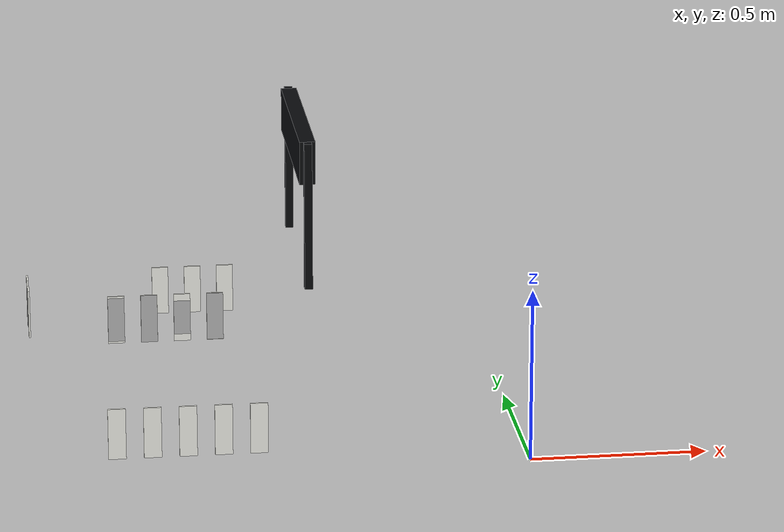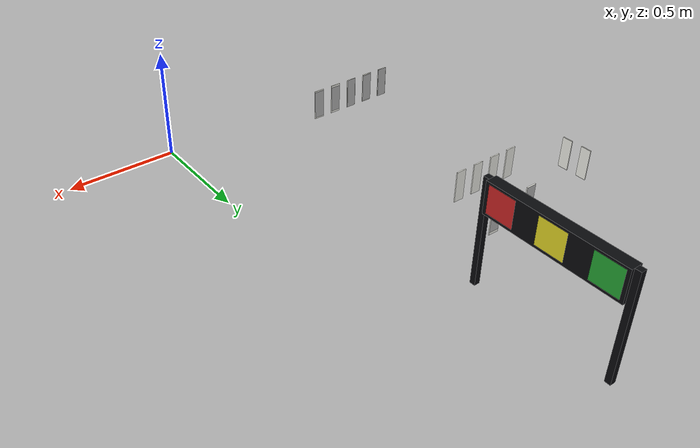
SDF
<sdf version="1.6">
 <world name="smart_community">
  <model name="north_signal">
   <static>true</static>
   <pose>-0.47 1.8 0 0 0 0</pose>
   <link name="body">
    <visual name="left_post">
     <pose>0 -0.3075 0.24 0 0 0</pose>
     <geometry><box><size>0.025 0.025 0.48</size></box></geometry>
     <material><ambient>0.035 0.04 0.05 1</ambient><diffuse>0.035 0.04 0.05 1</diffuse></material>
    </visual>
    <collision name="left_post">
     <pose>0 -0.3075 0.24 0 0 0</pose>
     <geometry><box><size>0.025 0.025 0.48</size></box></geometry>
     <surface><friction><ode><mu>1.0</mu><mu2>1.0</mu2></ode></friction></surface>
    </collision>
    <visual name="right_post">
     <pose>0 0.3075 0.24 0 0 0</pose>
     <geometry><box><size>0.025 0.025 0.48</size></box></geometry>
     <material><ambient>0.035 0.04 0.05 1</ambient><diffuse>0.035 0.04 0.05 1</diffuse></material>
    </visual>
    <collision name="right_post">
     <pose>0 0.3075 0.24 0 0 0</pose>
     <geometry><box><size>0.025 0.025 0.48</size></box></geometry>
     <surface><friction><ode><mu>1.0</mu><mu2>1.0</mu2></ode></friction></surface>
    </collision>
    <visual name="housing">
     <pose>0 0 0.41 0 0 0</pose>
     <geometry><box><size>0.05 0.59 0.14</size></box></geometry>
     <material><ambient>0.035 0.04 0.05 1</ambient><diffuse>0.035 0.04 0.05 1</diffuse></material>
    </visual>
    <collision name="housing">
     <pose>0 0 0.41 0 0 0</pose>
     <geometry><box><size>0.05 0.59 0.14</size></box></geometry>
     <surface><friction><ode><mu>1.0</mu><mu2>1.0</mu2></ode></friction></surface>
    </collision>
    <visual name="red">
     <pose>0.025001 -0.22 0.41 0 0 0</pose>
     <geometry>
      <mesh><uri>model://smart_community_sim/meshes/sign.dae</uri><scale>1 0.12 0.12</scale></mesh>
     </geometry>
     <material>
      <script>
       <uri>model://smart_community_sim/materials/scripts</uri>
       <uri>model://smart_community_sim/materials/textures</uri>
       <name>Community/signal_red_on</name>
      </script>
     </material>
    </visual>
    <visual name="yellow">
     <pose>0.025001 0 0.41 0 0 0</pose>
     <geometry>
      <mesh><uri>model://smart_community_sim/meshes/sign.dae</uri><scale>1 0.12 0.12</scale></mesh>
     </geometry>
     <material>
      <script>
       <uri>model://smart_community_sim/materials/scripts</uri>
       <uri>model://smart_community_sim/materials/textures</uri>
       <name>Community/signal_yellow_off</name>
      </script>
     </material>
    </visual>
    <visual name="green">
     <pose>0.025001 0.22 0.41 0 0 0</pose>
     <geometry>
      <mesh><uri>model://smart_community_sim/meshes/sign.dae</uri><scale>1 0.12 0.12</scale></mesh>
     </geometry>
     <material>
      <script>
       <uri>model://smart_community_sim/materials/scripts</uri>
       <uri>model://smart_community_sim/materials/textures</uri>
       <name>Community/signal_green_off</name>
      </script>
     </material>
    </visual>
   </link>
   <plugin name="signal_cycle" filename="libcommunity_signal.so">
    <redSeconds>10</redSeconds>
    <greenSeconds>15</greenSeconds>
    <yellowSeconds>5</yellowSeconds>
   </plugin>
  </model>
  <model name="person_A_resident_1">
   <static>true</static>
   <pose>-1.36 1.17 0 0 0 3.14159</pose>
   <link name="body">
    <visual name="standee">
     <pose>0 0 0.075 0 0 0</pose>
     <geometry><box><size>0.005 0.05 0.15</size></box></geometry>
     <material><ambient>0.96 0.96 0.93 1</ambient><diffuse>0.96 0.96 0.93 1</diffuse></material>
    </visual>
    <collision name="standee">
     <pose>0 0 0.075 0 0 0</pose>
     <geometry><box><size>0.005 0.05 0.15</size></box></geometry>
     <surface><friction><ode><mu>1.0</mu><mu2>1.0</mu2></ode></friction></surface>
    </collision>
    <visual name="portrait">
     <pose>0.002501 0 0.075 0 0 0</pose>
     <geometry>
      <mesh><uri>model://smart_community_sim/meshes/sign.dae</uri><scale>1 0.05 0.113548</scale></mesh>
     </geometry>
     <material>
      <script>
       <uri>model://smart_community_sim/materials/scripts</uri>
       <uri>model://smart_community_sim/materials/textures</uri>
       <name>Community/resident_1</name>
      </script>
     </material>
    </visual>
   </link>
  </model>
  <model name="person_A_resident_2">
   <static>true</static>
   <pose>-1.1 1.07 0 0 0 -1.5708</pose>
   <link name="body">
    <visual name="standee">
     <pose>0 0 0.075 0 0 0</pose>
     <geometry><box><size>0.005 0.05 0.15</size></box></geometry>
     <material><ambient>0.96 0.96 0.93 1</ambient><diffuse>0.96 0.96 0.93 1</diffuse></material>
    </visual>
    <collision name="standee">
     <pose>0 0 0.075 0 0 0</pose>
     <geometry><box><size>0.005 0.05 0.15</size></box></geometry>
     <surface><friction><ode><mu>1.0</mu><mu2>1.0</mu2></ode></friction></surface>
    </collision>
    <visual name="portrait">
     <pose>0.002501 0 0.075 0 0 0</pose>
     <geometry>
      <mesh><uri>model://smart_community_sim/meshes/sign.dae</uri><scale>1 0.05 0.138372</scale></mesh>
     </geometry>
     <material>
      <script>
       <uri>model://smart_community_sim/materials/scripts</uri>
       <uri>model://smart_community_sim/materials/textures</uri>
       <name>Community/resident_2</name>
      </script>
     </material>
    </visual>
   </link>
  </model>
  <model name="person_A_visitor_F1">
   <static>true</static>
   <pose>-1 1.07 0 0 0 -1.5708</pose>
   <link name="body">
    <visual name="standee">
     <pose>0 0 0.075 0 0 0</pose>
     <geometry><box><size>0.005 0.05 0.15</size></box></geometry>
     <material><ambient>0.96 0.96 0.93 1</ambient><diffuse>0.96 0.96 0.93 1</diffuse></material>
    </visual>
    <collision name="standee">
     <pose>0 0 0.075 0 0 0</pose>
     <geometry><box><size>0.005 0.05 0.15</size></box></geometry>
     <surface><friction><ode><mu>1.0</mu><mu2>1.0</mu2></ode></friction></surface>
    </collision>
    <visual name="portrait">
     <pose>0.002501 0 0.075 0 0 0</pose>
     <geometry>
      <mesh><uri>model://smart_community_sim/meshes/sign.dae</uri><scale>1 0.049726 0.15</scale></mesh>
     </geometry>
     <material>
      <script>
       <uri>model://smart_community_sim/materials/scripts</uri>
       <uri>model://smart_community_sim/materials/textures</uri>
       <name>Community/visitor_F1</name>
      </script>
     </material>
    </visual>
   </link>
  </model>
  <model name="person_A_resident_3">
   <static>true</static>
   <pose>-0.9 1.07 0 0 0 -1.5708</pose>
   <link name="body">
    <visual name="standee">
     <pose>0 0 0.075 0 0 0</pose>
     <geometry><box><size>0.005 0.05 0.15</size></box></geometry>
     <material><ambient>0.96 0.96 0.93 1</ambient><diffuse>0.96 0.96 0.93 1</diffuse></material>
    </visual>
    <collision name="standee">
     <pose>0 0 0.075 0 0 0</pose>
     <geometry><box><size>0.005 0.05 0.15</size></box></geometry>
     <surface><friction><ode><mu>1.0</mu><mu2>1.0</mu2></ode></friction></surface>
    </collision>
    <visual name="portrait">
     <pose>0.002501 0 0.075 0 0 0</pose>
     <geometry>
      <mesh><uri>model://smart_community_sim/meshes/sign.dae</uri><scale>1 0.05 0.106832</scale></mesh>
     </geometry>
     <material>
      <script>
       <uri>model://smart_community_sim/materials/scripts</uri>
       <uri>model://smart_community_sim/materials/textures</uri>
       <name>Community/resident_3</name>
      </script>
     </material>
    </visual>
   </link>
  </model>
  <model name="person_A_resident_4">
   <static>true</static>
   <pose>-0.85 1.32 0 0 0 1.5708</pose>
   <link name="body">
    <visual name="standee">
     <pose>0 0 0.075 0 0 0</pose>
     <geometry><box><size>0.005 0.05 0.15</size></box></geometry>
     <material><ambient>0.96 0.96 0.93 1</ambient><diffuse>0.96 0.96 0.93 1</diffuse></material>
    </visual>
    <collision name="standee">
     <pose>0 0 0.075 0 0 0</pose>
     <geometry><box><size>0.005 0.05 0.15</size></box></geometry>
     <surface><friction><ode><mu>1.0</mu><mu2>1.0</mu2></ode></friction></surface>
    </collision>
    <visual name="portrait">
     <pose>0.002501 0 0.075 0 0 0</pose>
     <geometry>
      <mesh><uri>model://smart_community_sim/meshes/sign.dae</uri><scale>1 0.05 0.106707</scale></mesh>
     </geometry>
     <material>
      <script>
       <uri>model://smart_community_sim/materials/scripts</uri>
       <uri>model://smart_community_sim/materials/textures</uri>
       <name>Community/resident_4</name>
      </script>
     </material>
    </visual>
   </link>
  </model>
  <model name="person_A_resident_9">
   <static>true</static>
   <pose>-0.95 1.32 0 0 0 1.5708</pose>
   <link name="body">
    <visual name="standee">
     <pose>0 0 0.075 0 0 0</pose>
     <geometry><box><size>0.005 0.05 0.15</size></box></geometry>
     <material><ambient>0.96 0.96 0.93 1</ambient><diffuse>0.96 0.96 0.93 1</diffuse></material>
    </visual>
    <collision name="standee">
     <pose>0 0 0.075 0 0 0</pose>
     <geometry><box><size>0.005 0.05 0.15</size></box></geometry>
     <surface><friction><ode><mu>1.0</mu><mu2>1.0</mu2></ode></friction></surface>
    </collision>
    <visual name="portrait">
     <pose>0.002501 0 0.075 0 0 0</pose>
     <geometry>
      <mesh><uri>model://smart_community_sim/meshes/sign.dae</uri><scale>1 0.05 0.147917</scale></mesh>
     </geometry>
     <material>
      <script>
       <uri>model://smart_community_sim/materials/scripts</uri>
       <uri>model://smart_community_sim/materials/textures</uri>
       <name>Community/resident_9</name>
      </script>
     </material>
    </visual>
   </link>
  </model>
  <model name="person_A_resident_10">
   <static>true</static>
   <pose>-0.75 1.32 0 0 0 1.5708</pose>
   <link name="body">
    <visual name="standee">
     <pose>0 0 0.075 0 0 0</pose>
     <geometry><box><size>0.005 0.05 0.15</size></box></geometry>
     <material><ambient>0.96 0.96 0.93 1</ambient><diffuse>0.96 0.96 0.93 1</diffuse></material>
    </visual>
    <collision name="standee">
     <pose>0 0 0.075 0 0 0</pose>
     <geometry><box><size>0.005 0.05 0.15</size></box></geometry>
     <surface><friction><ode><mu>1.0</mu><mu2>1.0</mu2></ode></friction></surface>
    </collision>
    <visual name="portrait">
     <pose>0.002501 0 0.075 0 0 0</pose>
     <geometry>
      <mesh><uri>model://smart_community_sim/meshes/sign.dae</uri><scale>1 0.05 0.124828</scale></mesh>
     </geometry>
     <material>
      <script>
       <uri>model://smart_community_sim/materials/scripts</uri>
       <uri>model://smart_community_sim/materials/textures</uri>
       <name>Community/resident_10</name>
      </script>
     </material>
    </visual>
   </link>
  </model>
  <model name="person_A_resident_11">
   <static>true</static>
   <pose>-0.8 1.07 0 0 0 -1.5708</pose>
   <link name="body">
    <visual name="standee">
     <pose>0 0 0.075 0 0 0</pose>
     <geometry><box><size>0.005 0.05 0.15</size></box></geometry>
     <material><ambient>0.96 0.96 0.93 1</ambient><diffuse>0.96 0.96 0.93 1</diffuse></material>
    </visual>
    <collision name="standee">
     <pose>0 0 0.075 0 0 0</pose>
     <geometry><box><size>0.005 0.05 0.15</size></box></geometry>
     <surface><friction><ode><mu>1.0</mu><mu2>1.0</mu2></ode></friction></surface>
    </collision>
    <visual name="portrait">
     <pose>0.002501 0 0.075 0 0 0</pose>
     <geometry>
      <mesh><uri>model://smart_community_sim/meshes/sign.dae</uri><scale>1 0.05 0.147934</scale></mesh>
     </geometry>
     <material>
      <script>
       <uri>model://smart_community_sim/materials/scripts</uri>
       <uri>model://smart_community_sim/materials/textures</uri>
       <name>Community/resident_11</name>
      </script>
     </material>
    </visual>
   </link>
  </model>
  <model name="person_A_resident_12">
   <static>true</static>
   <pose>-1.36 1.27 0 0 0 3.14159</pose>
   <link name="body">
    <visual name="standee">
     <pose>0 0 0.075 0 0 0</pose>
     <geometry><box><size>0.005 0.05 0.15</size></box></geometry>
     <material><ambient>0.96 0.96 0.93 1</ambient><diffuse>0.96 0.96 0.93 1</diffuse></material>
    </visual>
    <collision name="standee">
     <pose>0 0 0.075 0 0 0</pose>
     <geometry><box><size>0.005 0.05 0.15</size></box></geometry>
     <surface><friction><ode><mu>1.0</mu><mu2>1.0</mu2></ode></friction></surface>
    </collision>
    <visual name="portrait">
     <pose>0.002501 0 0.075 0 0 0</pose>
     <geometry>
      <mesh><uri>model://smart_community_sim/meshes/sign.dae</uri><scale>1 0.0490223 0.15</scale></mesh>
     </geometry>
     <material>
      <script>
       <uri>model://smart_community_sim/materials/scripts</uri>
       <uri>model://smart_community_sim/materials/textures</uri>
       <name>Community/resident_12</name>
      </script>
     </material>
    </visual>
   </link>
  </model>
  <model name="person_B_resident_5">
   <static>true</static>
   <pose>-1.15 0.14 0 0 0 1.5708</pose>
   <link name="body">
    <visual name="standee">
     <pose>0 0 0.075 0 0 0</pose>
     <geometry><box><size>0.005 0.05 0.15</size></box></geometry>
     <material><ambient>0.96 0.96 0.93 1</ambient><diffuse>0.96 0.96 0.93 1</diffuse></material>
    </visual>
    <collision name="standee">
     <pose>0 0 0.075 0 0 0</pose>
     <geometry><box><size>0.005 0.05 0.15</size></box></geometry>
     <surface><friction><ode><mu>1.0</mu><mu2>1.0</mu2></ode></friction></surface>
    </collision>
    <visual name="portrait">
     <pose>0.002501 0 0.075 0 0 0</pose>
     <geometry>
      <mesh><uri>model://smart_community_sim/meshes/sign.dae</uri><scale>1 0.0475504 0.15</scale></mesh>
     </geometry>
     <material>
      <script>
       <uri>model://smart_community_sim/materials/scripts</uri>
       <uri>model://smart_community_sim/materials/textures</uri>
       <name>Community/resident_5</name>
      </script>
     </material>
    </visual>
   </link>
  </model>
  <model name="person_B_resident_6">
   <static>true</static>
   <pose>-0.95 0.14 0 0 0 1.5708</pose>
   <link name="body">
    <visual name="standee">
     <pose>0 0 0.075 0 0 0</pose>
     <geometry><box><size>0.005 0.05 0.15</size></box></geometry>
     <material><ambient>0.96 0.96 0.93 1</ambient><diffuse>0.96 0.96 0.93 1</diffuse></material>
    </visual>
    <collision name="standee">
     <pose>0 0 0.075 0 0 0</pose>
     <geometry><box><size>0.005 0.05 0.15</size></box></geometry>
     <surface><friction><ode><mu>1.0</mu><mu2>1.0</mu2></ode></friction></surface>
    </collision>
    <visual name="portrait">
     <pose>0.002501 0 0.075 0 0 0</pose>
     <geometry>
      <mesh><uri>model://smart_community_sim/meshes/sign.dae</uri><scale>1 0.0459538 0.15</scale></mesh>
     </geometry>
     <material>
      <script>
       <uri>model://smart_community_sim/materials/scripts</uri>
       <uri>model://smart_community_sim/materials/textures</uri>
       <name>Community/resident_6</name>
      </script>
     </material>
    </visual>
   </link>
  </model>
  <model name="person_B_resident_7">
   <static>true</static>
   <pose>-0.85 0.14 0 0 0 1.5708</pose>
   <link name="body">
    <visual name="standee">
     <pose>0 0 0.075 0 0 0</pose>
     <geometry><box><size>0.005 0.05 0.15</size></box></geometry>
     <material><ambient>0.96 0.96 0.93 1</ambient><diffuse>0.96 0.96 0.93 1</diffuse></material>
    </visual>
    <collision name="standee">
     <pose>0 0 0.075 0 0 0</pose>
     <geometry><box><size>0.005 0.05 0.15</size></box></geometry>
     <surface><friction><ode><mu>1.0</mu><mu2>1.0</mu2></ode></friction></surface>
    </collision>
    <visual name="portrait">
     <pose>0.002501 0 0.075 0 0 0</pose>
     <geometry>
      <mesh><uri>model://smart_community_sim/meshes/sign.dae</uri><scale>1 0.05 0.129528</scale></mesh>
     </geometry>
     <material>
      <script>
       <uri>model://smart_community_sim/materials/scripts</uri>
       <uri>model://smart_community_sim/materials/textures</uri>
       <name>Community/resident_7</name>
      </script>
     </material>
    </visual>
   </link>
  </model>
  <model name="person_B_resident_13">
   <static>true</static>
   <pose>-1.05 0.14 0 0 0 1.5708</pose>
   <link name="body">
    <visual name="standee">
     <pose>0 0 0.075 0 0 0</pose>
     <geometry><box><size>0.005 0.05 0.15</size></box></geometry>
     <material><ambient>0.96 0.96 0.93 1</ambient><diffuse>0.96 0.96 0.93 1</diffuse></material>
    </visual>
    <collision name="standee">
     <pose>0 0 0.075 0 0 0</pose>
     <geometry><box><size>0.005 0.05 0.15</size></box></geometry>
     <surface><friction><ode><mu>1.0</mu><mu2>1.0</mu2></ode></friction></surface>
    </collision>
    <visual name="portrait">
     <pose>0.002501 0 0.075 0 0 0</pose>
     <geometry>
      <mesh><uri>model://smart_community_sim/meshes/sign.dae</uri><scale>1 0.05 0.140873</scale></mesh>
     </geometry>
     <material>
      <script>
       <uri>model://smart_community_sim/materials/scripts</uri>
       <uri>model://smart_community_sim/materials/textures</uri>
       <name>Community/resident_13</name>
      </script>
     </material>
    </visual>
   </link>
  </model>
  <model name="person_B_resident_14">
   <static>true</static>
   <pose>-0.75 0.14 0 0 0 1.5708</pose>
   <link name="body">
    <visual name="standee">
     <pose>0 0 0.075 0 0 0</pose>
     <geometry><box><size>0.005 0.05 0.15</size></box></geometry>
     <material><ambient>0.96 0.96 0.93 1</ambient><diffuse>0.96 0.96 0.93 1</diffuse></material>
    </visual>
    <collision name="standee">
     <pose>0 0 0.075 0 0 0</pose>
     <geometry><box><size>0.005 0.05 0.15</size></box></geometry>
     <surface><friction><ode><mu>1.0</mu><mu2>1.0</mu2></ode></friction></surface>
    </collision>
    <visual name="portrait">
     <pose>0.002501 0 0.075 0 0 0</pose>
     <geometry>
      <mesh><uri>model://smart_community_sim/meshes/sign.dae</uri><scale>1 0.05 0.137805</scale></mesh>
     </geometry>
     <material>
      <script>
       <uri>model://smart_community_sim/materials/scripts</uri>
       <uri>model://smart_community_sim/materials/textures</uri>
       <name>Community/resident_14</name>
      </script>
     </material>
    </visual>
   </link>
  </model>
 </world>
</sdf>
